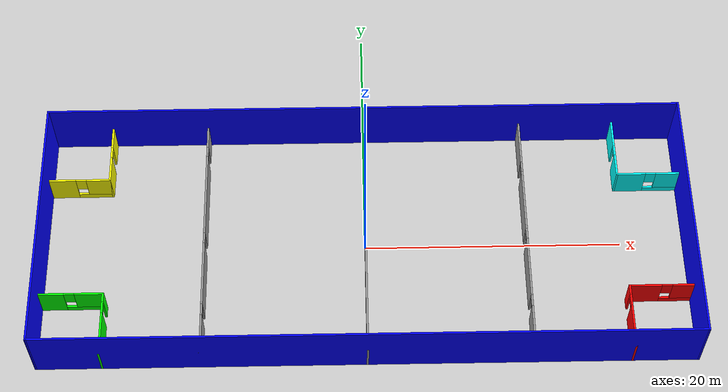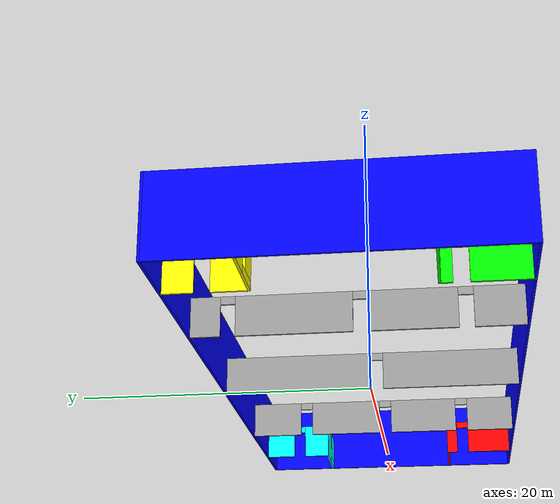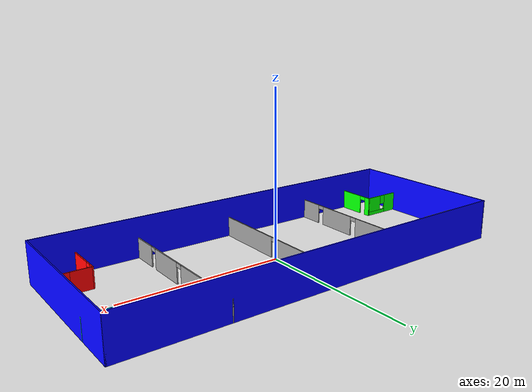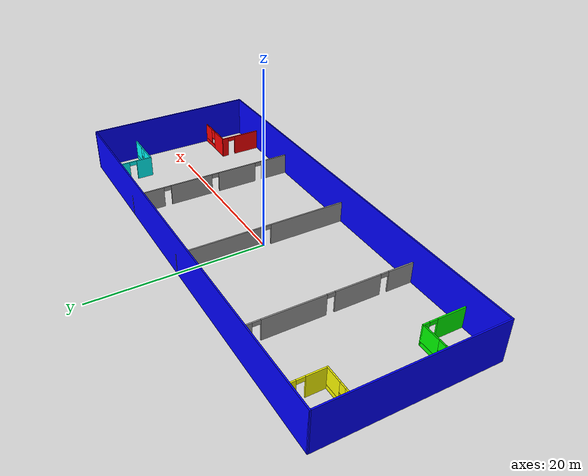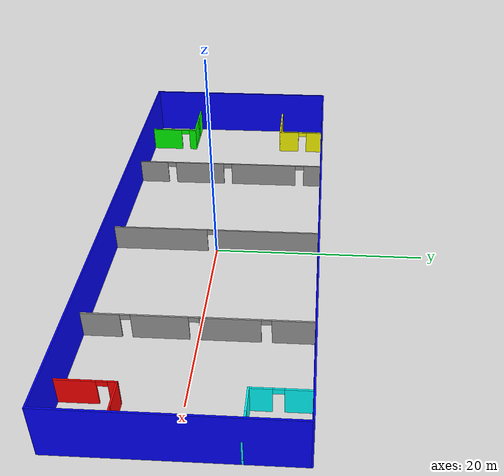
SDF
<?xml version='1.0'?>
<sdf version='1.6'>
  <model name='my_office'>
    <pose frame=''>0 0 0 0 -0 0</pose>
    <link name='Wall_17'>
      <pose frame=''>-22.557 5.123 0 0 -0 0</pose>
      <visual name='Wall_17_Visual_0'>
        <pose frame=''>-1.37462 0 1.25 0 -0 0</pose>
        <geometry>
          <box>
            <size>2.25075 0.15 2.5</size>
          </box>
        </geometry>
        <material>
          <script>
            <uri>file://media/materials/scripts/gazebo.material</uri>
            <name>Gazebo/Grey</name>
          </script>
          <ambient>1 1 0 1</ambient>
        </material>
        <meta>
          <layer>0</layer>
        </meta>
      </visual>
      <collision name='Wall_17_Collision_0'>
        <geometry>
          <box>
            <size>2.25075 0.15 2.5</size>
          </box>
        </geometry>
        <pose frame=''>-1.37462 0 1.25 0 -0 0</pose>
      </collision>
      <visual name='Wall_17_Visual_1'>
        <pose frame=''>1.12538 0 0.25 0 -0 0</pose>
        <geometry>
          <box>
            <size>2.74925 0.15 0.5</size>
          </box>
        </geometry>
        <material>
          <script>
            <uri>file://media/materials/scripts/gazebo.material</uri>
            <name>Gazebo/Grey</name>
          </script>
          <ambient>1 1 0 1</ambient>
        </material>
        <meta>
          <layer>0</layer>
        </meta>
      </visual>
      <collision name='Wall_17_Collision_1'>
        <geometry>
          <box>
            <size>2.74925 0.15 0.5</size>
          </box>
        </geometry>
        <pose frame=''>1.12538 0 0.25 0 -0 0</pose>
      </collision>
      <visual name='Wall_17_Visual_2'>
        <pose frame=''>1.52538 0 1.5 0 -0 0</pose>
        <geometry>
          <box>
            <size>1.94925 0.15 2</size>
          </box>
        </geometry>
        <material>
          <script>
            <uri>file://media/materials/scripts/gazebo.material</uri>
            <name>Gazebo/Grey</name>
          </script>
          <ambient>1 1 0 1</ambient>
        </material>
        <meta>
          <layer>0</layer>
        </meta>
      </visual>
      <collision name='Wall_17_Collision_2'>
        <geometry>
          <box>
            <size>1.94925 0.15 2</size>
          </box>
        </geometry>
        <pose frame=''>1.52538 0 1.5 0 -0 0</pose>
      </collision>
      <visual name='Wall_17_Visual_3'>
        <pose frame=''>0.150753 0 1.9 0 -0 0</pose>
        <geometry>
          <box>
            <size>0.8 0.15 1.2</size>
          </box>
        </geometry>
        <material>
          <script>
            <uri>file://media/materials/scripts/gazebo.material</uri>
            <name>Gazebo/Grey</name>
          </script>
          <ambient>1 1 0 1</ambient>
        </material>
        <meta>
          <layer>0</layer>
        </meta>
      </visual>
      <collision name='Wall_17_Collision_3'>
        <geometry>
          <box>
            <size>0.8 0.15 1.2</size>
          </box>
        </geometry>
        <pose frame=''>0.150753 0 1.9 0 -0 0</pose>
      </collision>
    </link>
    <link name='Wall_18'>
      <pose frame=''>-20.132 7.548 0 0 -0 1.5708</pose>
      <visual name='Wall_18_Visual_0'>
        <pose frame=''>-1.39336 0 1.25 0 -0 0</pose>
        <geometry>
          <box>
            <size>2.21328 0.15 2.5</size>
          </box>
        </geometry>
        <material>
          <script>
            <uri>file://media/materials/scripts/gazebo.material</uri>
            <name>Gazebo/Grey</name>
          </script>
          <ambient>1 1 0 1</ambient>
        </material>
        <meta>
          <layer>0</layer>
        </meta>
      </visual>
      <collision name='Wall_18_Collision_0'>
        <geometry>
          <box>
            <size>2.21328 0.15 2.5</size>
          </box>
        </geometry>
        <pose frame=''>-1.39336 0 1.25 0 -0 0</pose>
      </collision>
      <visual name='Wall_18_Visual_1'>
        <pose frame=''>1.55664 0 1.25 0 -0 0</pose>
        <geometry>
          <box>
            <size>1.88672 0.15 2.5</size>
          </box>
        </geometry>
        <material>
          <script>
            <uri>file://media/materials/scripts/gazebo.material</uri>
            <name>Gazebo/Grey</name>
          </script>
          <ambient>1 1 0 1</ambient>
        </material>
        <meta>
          <layer>0</layer>
        </meta>
      </visual>
      <collision name='Wall_18_Collision_1'>
        <geometry>
          <box>
            <size>1.88672 0.15 2.5</size>
          </box>
        </geometry>
        <pose frame=''>1.55664 0 1.25 0 -0 0</pose>
      </collision>
      <visual name='Wall_18_Visual_2'>
        <pose frame=''>0.163277 0 2.25 0 -0 0</pose>
        <geometry>
          <box>
            <size>0.9 0.15 0.5</size>
          </box>
        </geometry>
        <material>
          <script>
            <uri>file://media/materials/scripts/gazebo.material</uri>
            <name>Gazebo/Grey</name>
          </script>
          <ambient>1 1 0 1</ambient>
        </material>
        <meta>
          <layer>0</layer>
        </meta>
      </visual>
      <collision name='Wall_18_Collision_2'>
        <geometry>
          <box>
            <size>0.9 0.15 0.5</size>
          </box>
        </geometry>
        <pose frame=''>0.163277 0 2.25 0 -0 0</pose>
      </collision>
    </link>
    <link name='Wall_21'>
      <pose frame=''>-22.5 -5 0 0 -0 0</pose>
      <visual name='Wall_21_Visual_0'>
        <pose frame=''>-1.52857 0 1.25 0 -0 0</pose>
        <geometry>
          <box>
            <size>2.09286 0.15 2.5</size>
          </box>
        </geometry>
        <material>
          <script>
            <uri>file://media/materials/scripts/gazebo.material</uri>
            <name>Gazebo/Grey</name>
          </script>
          <ambient>0 1 0 1</ambient>
        </material>
        <meta>
          <layer>0</layer>
        </meta>
      </visual>
      <collision name='Wall_21_Collision_0'>
        <geometry>
          <box>
            <size>2.09286 0.15 2.5</size>
          </box>
        </geometry>
        <pose frame=''>-1.52857 0 1.25 0 -0 0</pose>
      </collision>
      <visual name='Wall_21_Visual_1'>
        <pose frame=''>1.04643 0 0.25 0 -0 0</pose>
        <geometry>
          <box>
            <size>3.05714 0.15 0.5</size>
          </box>
        </geometry>
        <material>
          <script>
            <uri>file://media/materials/scripts/gazebo.material</uri>
            <name>Gazebo/Grey</name>
          </script>
          <ambient>0 1 0 1</ambient>
        </material>
        <meta>
          <layer>0</layer>
        </meta>
      </visual>
      <collision name='Wall_21_Collision_1'>
        <geometry>
          <box>
            <size>3.05714 0.15 0.5</size>
          </box>
        </geometry>
        <pose frame=''>1.04643 0 0.25 0 -0 0</pose>
      </collision>
      <visual name='Wall_21_Visual_2'>
        <pose frame=''>1.44643 0 1.5 0 -0 0</pose>
        <geometry>
          <box>
            <size>2.25714 0.15 2</size>
          </box>
        </geometry>
        <material>
          <script>
            <uri>file://media/materials/scripts/gazebo.material</uri>
            <name>Gazebo/Grey</name>
          </script>
          <ambient>0 1 0 1</ambient>
        </material>
        <meta>
          <layer>0</layer>
        </meta>
      </visual>
      <collision name='Wall_21_Collision_2'>
        <geometry>
          <box>
            <size>2.25714 0.15 2</size>
          </box>
        </geometry>
        <pose frame=''>1.44643 0 1.5 0 -0 0</pose>
      </collision>
      <visual name='Wall_21_Visual_3'>
        <pose frame=''>-0.08214 0 1.9 0 -0 0</pose>
        <geometry>
          <box>
            <size>0.8 0.15 1.2</size>
          </box>
        </geometry>
        <material>
          <script>
            <uri>file://media/materials/scripts/gazebo.material</uri>
            <name>Gazebo/Grey</name>
          </script>
          <ambient>0 1 0 1</ambient>
        </material>
        <meta>
          <layer>0</layer>
        </meta>
      </visual>
      <collision name='Wall_21_Collision_3'>
        <geometry>
          <box>
            <size>0.8 0.15 1.2</size>
          </box>
        </geometry>
        <pose frame=''>-0.08214 0 1.9 0 -0 0</pose>
      </collision>
    </link>
    <link name='Wall_25'>
      <pose frame=''>-20 -7.5 0 0 0 -1.5708</pose>
      <visual name='Wall_25_Visual_0'>
        <pose frame=''>-2.18168 0 1.25 0 -0 0</pose>
        <geometry>
          <box>
            <size>0.78664 0.15 2.5</size>
          </box>
        </geometry>
        <material>
          <script>
            <uri>file://media/materials/scripts/gazebo.material</uri>
            <name>Gazebo/Grey</name>
          </script>
          <ambient>0 1 0 1</ambient>
        </material>
        <meta>
          <layer>0</layer>
        </meta>
      </visual>
      <collision name='Wall_25_Collision_0'>
        <geometry>
          <box>
            <size>0.78664 0.15 2.5</size>
          </box>
        </geometry>
        <pose frame=''>-2.18168 0 1.25 0 -0 0</pose>
      </collision>
      <visual name='Wall_25_Visual_1'>
        <pose frame=''>0.84332 0 1.25 0 -0 0</pose>
        <geometry>
          <box>
            <size>3.46336 0.15 2.5</size>
          </box>
        </geometry>
        <material>
          <script>
            <uri>file://media/materials/scripts/gazebo.material</uri>
            <name>Gazebo/Grey</name>
          </script>
          <ambient>0 1 0 1</ambient>
        </material>
        <meta>
          <layer>0</layer>
        </meta>
      </visual>
      <collision name='Wall_25_Collision_1'>
        <geometry>
          <box>
            <size>3.46336 0.15 2.5</size>
          </box>
        </geometry>
        <pose frame=''>0.84332 0 1.25 0 -0 0</pose>
      </collision>
      <visual name='Wall_25_Visual_2'>
        <pose frame=''>-1.33836 0 2.25 0 -0 0</pose>
        <geometry>
          <box>
            <size>0.9 0.15 0.5</size>
          </box>
        </geometry>
        <material>
          <script>
            <uri>file://media/materials/scripts/gazebo.material</uri>
            <name>Gazebo/Grey</name>
          </script>
          <ambient>0 1 0 1</ambient>
        </material>
        <meta>
          <layer>0</layer>
        </meta>
      </visual>
      <collision name='Wall_25_Collision_2'>
        <geometry>
          <box>
            <size>0.9 0.15 0.5</size>
          </box>
        </geometry>
        <pose frame=''>-1.33836 0 2.25 0 -0 0</pose>
      </collision>
    </link>
    <link name='Wall_27'>
      <pose frame=''>20 -7.5 0 0 -0 1.5708</pose>
      <visual name='Wall_27_Visual_0'>
        <pose frame=''>-0.853021 0 1.25 0 -0 0</pose>
        <geometry>
          <box>
            <size>3.44396 0.15 2.5</size>
          </box>
        </geometry>
        <material>
          <script>
            <uri>file://media/materials/scripts/gazebo.material</uri>
            <name>Gazebo/Grey</name>
          </script>
          <ambient>1 0 0 1</ambient>
        </material>
        <meta>
          <layer>0</layer>
        </meta>
      </visual>
      <collision name='Wall_27_Collision_0'>
        <geometry>
          <box>
            <size>3.44396 0.15 2.5</size>
          </box>
        </geometry>
        <pose frame=''>-0.853021 0 1.25 0 -0 0</pose>
      </collision>
      <visual name='Wall_27_Visual_1'>
        <pose frame=''>2.17198 0 1.25 0 -0 0</pose>
        <geometry>
          <box>
            <size>0.806041 0.15 2.5</size>
          </box>
        </geometry>
        <material>
          <script>
            <uri>file://media/materials/scripts/gazebo.material</uri>
            <name>Gazebo/Grey</name>
          </script>
          <ambient>1 0 0 1</ambient>
        </material>
        <meta>
          <layer>0</layer>
        </meta>
      </visual>
      <collision name='Wall_27_Collision_1'>
        <geometry>
          <box>
            <size>0.806041 0.15 2.5</size>
          </box>
        </geometry>
        <pose frame=''>2.17198 0 1.25 0 -0 0</pose>
      </collision>
      <visual name='Wall_27_Visual_2'>
        <pose frame=''>1.31896 0 2.25 0 -0 0</pose>
        <geometry>
          <box>
            <size>0.9 0.15 0.5</size>
          </box>
        </geometry>
        <material>
          <script>
            <uri>file://media/materials/scripts/gazebo.material</uri>
            <name>Gazebo/Grey</name>
          </script>
          <ambient>1 0 0 1</ambient>
        </material>
        <meta>
          <layer>0</layer>
        </meta>
      </visual>
      <collision name='Wall_27_Collision_2'>
        <geometry>
          <box>
            <size>0.9 0.15 0.5</size>
          </box>
        </geometry>
        <pose frame=''>1.31896 0 2.25 0 -0 0</pose>
      </collision>
    </link>
    <link name='Wall_29'>
      <pose frame=''>22.5 -5 0 0 -0 0</pose>
      <visual name='Wall_29_Visual_0'>
        <pose frame=''>-1.30919 0 1.25 0 -0 0</pose>
        <geometry>
          <box>
            <size>2.53162 0.15 2.5</size>
          </box>
        </geometry>
        <material>
          <script>
            <uri>file://media/materials/scripts/gazebo.material</uri>
            <name>Gazebo/Grey</name>
          </script>
          <ambient>1 0 0 1</ambient>
        </material>
        <meta>
          <layer>0</layer>
        </meta>
      </visual>
      <collision name='Wall_29_Collision_0'>
        <geometry>
          <box>
            <size>2.53162 0.15 2.5</size>
          </box>
        </geometry>
        <pose frame=''>-1.30919 0 1.25 0 -0 0</pose>
      </collision>
      <visual name='Wall_29_Visual_1'>
        <pose frame=''>1.26581 0 0.25 0 -0 0</pose>
        <geometry>
          <box>
            <size>2.61838 0.15 0.5</size>
          </box>
        </geometry>
        <material>
          <script>
            <uri>file://media/materials/scripts/gazebo.material</uri>
            <name>Gazebo/Grey</name>
          </script>
          <ambient>1 0 0 1</ambient>
        </material>
        <meta>
          <layer>0</layer>
        </meta>
      </visual>
      <collision name='Wall_29_Collision_1'>
        <geometry>
          <box>
            <size>2.61838 0.15 0.5</size>
          </box>
        </geometry>
        <pose frame=''>1.26581 0 0.25 0 -0 0</pose>
      </collision>
      <visual name='Wall_29_Visual_2'>
        <pose frame=''>1.66581 0 1.5 0 -0 0</pose>
        <geometry>
          <box>
            <size>1.81838 0.15 2</size>
          </box>
        </geometry>
        <material>
          <script>
            <uri>file://media/materials/scripts/gazebo.material</uri>
            <name>Gazebo/Grey</name>
          </script>
          <ambient>1 0 0 1</ambient>
        </material>
        <meta>
          <layer>0</layer>
        </meta>
      </visual>
      <collision name='Wall_29_Collision_2'>
        <geometry>
          <box>
            <size>1.81838 0.15 2</size>
          </box>
        </geometry>
        <pose frame=''>1.66581 0 1.5 0 -0 0</pose>
      </collision>
      <visual name='Wall_29_Visual_3'>
        <pose frame=''>0.356623 0 1.9 0 -0 0</pose>
        <geometry>
          <box>
            <size>0.8 0.15 1.2</size>
          </box>
        </geometry>
        <material>
          <script>
            <uri>file://media/materials/scripts/gazebo.material</uri>
            <name>Gazebo/Grey</name>
          </script>
          <ambient>1 0 0 1</ambient>
        </material>
        <meta>
          <layer>0</layer>
        </meta>
      </visual>
      <collision name='Wall_29_Collision_3'>
        <geometry>
          <box>
            <size>0.8 0.15 1.2</size>
          </box>
        </geometry>
        <pose frame=''>0.356623 0 1.9 0 -0 0</pose>
      </collision>
    </link>
    <link name='Wall_3'>
      <collision name='Wall_3_Collision'>
        <geometry>
          <box>
            <size>20.15 0.15 5</size>
          </box>
        </geometry>
        <pose frame=''>0 0 2.5 0 -0 0</pose>
      </collision>
      <visual name='Wall_3_Visual'>
        <pose frame=''>0 0 2.5 0 -0 0</pose>
        <geometry>
          <box>
            <size>20.15 0.15 5</size>
          </box>
        </geometry>
        <material>
          <script>
            <uri>file://media/materials/scripts/gazebo.material</uri>
            <name>Gazebo/Grey</name>
          </script>
          <ambient>0 0 1 1</ambient>
        </material>
        <meta>
          <layer>0</layer>
        </meta>
      </visual>
      <pose frame=''>-25 0 0 0 0 -1.5708</pose>
    </link>
    <link name='Wall_31'>
      <pose frame=''>20 7.5 0 0 0 -1.5708</pose>
      <visual name='Wall_31_Visual_0'>
        <pose frame=''>-1.40783 0 1.25 0 -0 0</pose>
        <geometry>
          <box>
            <size>2.33433 0.15 2.5</size>
          </box>
        </geometry>
        <material>
          <script>
            <uri>file://media/materials/scripts/gazebo.material</uri>
            <name>Gazebo/Grey</name>
          </script>
          <ambient>0 1 1 1</ambient>
        </material>
        <meta>
          <layer>0</layer>
        </meta>
      </visual>
      <collision name='Wall_31_Collision_0'>
        <geometry>
          <box>
            <size>2.33433 0.15 2.5</size>
          </box>
        </geometry>
        <pose frame=''>-1.40783 0 1.25 0 -0 0</pose>
      </collision>
      <visual name='Wall_31_Visual_1'>
        <pose frame=''>1.61717 0 1.25 0 -0 0</pose>
        <geometry>
          <box>
            <size>1.91567 0.15 2.5</size>
          </box>
        </geometry>
        <material>
          <script>
            <uri>file://media/materials/scripts/gazebo.material</uri>
            <name>Gazebo/Grey</name>
          </script>
          <ambient>0 1 1 1</ambient>
        </material>
        <meta>
          <layer>0</layer>
        </meta>
      </visual>
      <collision name='Wall_31_Collision_1'>
        <geometry>
          <box>
            <size>1.91567 0.15 2.5</size>
          </box>
        </geometry>
        <pose frame=''>1.61717 0 1.25 0 -0 0</pose>
      </collision>
      <visual name='Wall_31_Visual_2'>
        <pose frame=''>0.209334 0 2.25 0 -0 0</pose>
        <geometry>
          <box>
            <size>0.9 0.15 0.5</size>
          </box>
        </geometry>
        <material>
          <script>
            <uri>file://media/materials/scripts/gazebo.material</uri>
            <name>Gazebo/Grey</name>
          </script>
          <ambient>0 1 1 1</ambient>
        </material>
        <meta>
          <layer>0</layer>
        </meta>
      </visual>
      <collision name='Wall_31_Collision_2'>
        <geometry>
          <box>
            <size>0.9 0.15 0.5</size>
          </box>
        </geometry>
        <pose frame=''>0.209334 0 2.25 0 -0 0</pose>
      </collision>
    </link>
    <link name='Wall_33'>
      <pose frame=''>22.5 5 0 0 -0 0</pose>
      <visual name='Wall_33_Visual_0'>
        <pose frame=''>-1.41033 0 1.25 0 -0 0</pose>
        <geometry>
          <box>
            <size>2.32934 0.15 2.5</size>
          </box>
        </geometry>
        <material>
          <script>
            <uri>file://media/materials/scripts/gazebo.material</uri>
            <name>Gazebo/Grey</name>
          </script>
          <ambient>0 1 1 1</ambient>
        </material>
        <meta>
          <layer>0</layer>
        </meta>
      </visual>
      <collision name='Wall_33_Collision_0'>
        <geometry>
          <box>
            <size>2.32934 0.15 2.5</size>
          </box>
        </geometry>
        <pose frame=''>-1.41033 0 1.25 0 -0 0</pose>
      </collision>
      <visual name='Wall_33_Visual_1'>
        <pose frame=''>1.16467 0 0.25 0 -0 0</pose>
        <geometry>
          <box>
            <size>2.82065 0.15 0.5</size>
          </box>
        </geometry>
        <material>
          <script>
            <uri>file://media/materials/scripts/gazebo.material</uri>
            <name>Gazebo/Grey</name>
          </script>
          <ambient>0 1 1 1</ambient>
        </material>
        <meta>
          <layer>0</layer>
        </meta>
      </visual>
      <collision name='Wall_33_Collision_1'>
        <geometry>
          <box>
            <size>2.82065 0.15 0.5</size>
          </box>
        </geometry>
        <pose frame=''>1.16467 0 0.25 0 -0 0</pose>
      </collision>
      <visual name='Wall_33_Visual_2'>
        <pose frame=''>1.56467 0 1.5 0 -0 0</pose>
        <geometry>
          <box>
            <size>2.02066 0.15 2</size>
          </box>
        </geometry>
        <material>
          <script>
            <uri>file://media/materials/scripts/gazebo.material</uri>
            <name>Gazebo/Grey</name>
          </script>
          <ambient>0 1 1 1</ambient>
        </material>
        <meta>
          <layer>0</layer>
        </meta>
      </visual>
      <collision name='Wall_33_Collision_2'>
        <geometry>
          <box>
            <size>2.02066 0.15 2</size>
          </box>
        </geometry>
        <pose frame=''>1.56467 0 1.5 0 -0 0</pose>
      </collision>
      <visual name='Wall_33_Visual_3'>
        <pose frame=''>0.154345 0 1.9 0 -0 0</pose>
        <geometry>
          <box>
            <size>0.8 0.15 1.2</size>
          </box>
        </geometry>
        <material>
          <script>
            <uri>file://media/materials/scripts/gazebo.material</uri>
            <name>Gazebo/Grey</name>
          </script>
          <ambient>0 1 1 1</ambient>
        </material>
        <meta>
          <layer>0</layer>
        </meta>
      </visual>
      <collision name='Wall_33_Collision_3'>
        <geometry>
          <box>
            <size>0.8 0.15 1.2</size>
          </box>
        </geometry>
        <pose frame=''>0.154345 0 1.9 0 -0 0</pose>
      </collision>
    </link>
    <link name='Wall_35'>
      <pose frame=''>0 0 0 0 0 -1.5708</pose>
      <visual name='Wall_35_Visual_0'>
        <pose frame=''>-5.06455 0 1.25 0 -0 0</pose>
        <geometry>
          <box>
            <size>10.0209 0.15 2.5</size>
          </box>
        </geometry>
        <material>
          <script>
            <uri>file://media/materials/scripts/gazebo.material</uri>
            <name>Gazebo/Grey</name>
          </script>
          <ambient>0 0 0 1</ambient>
        </material>
        <meta>
          <layer>0</layer>
        </meta>
      </visual>
      <collision name='Wall_35_Collision_0'>
        <geometry>
          <box>
            <size>10.0209 0.15 2.5</size>
          </box>
        </geometry>
        <pose frame=''>-5.06455 0 1.25 0 -0 0</pose>
      </collision>
      <visual name='Wall_35_Visual_1'>
        <pose frame=''>5.46045 0 1.25 0 -0 0</pose>
        <geometry>
          <box>
            <size>9.22911 0.15 2.5</size>
          </box>
        </geometry>
        <material>
          <script>
            <uri>file://media/materials/scripts/gazebo.material</uri>
            <name>Gazebo/Grey</name>
          </script>
          <ambient>0 0 0 1</ambient>
        </material>
        <meta>
          <layer>0</layer>
        </meta>
      </visual>
      <collision name='Wall_35_Collision_1'>
        <geometry>
          <box>
            <size>9.22911 0.15 2.5</size>
          </box>
        </geometry>
        <pose frame=''>5.46045 0 1.25 0 -0 0</pose>
      </collision>
      <visual name='Wall_35_Visual_2'>
        <pose frame=''>0.395894 0 2.25 0 -0 0</pose>
        <geometry>
          <box>
            <size>0.9 0.15 0.5</size>
          </box>
        </geometry>
        <material>
          <script>
            <uri>file://media/materials/scripts/gazebo.material</uri>
            <name>Gazebo/Grey</name>
          </script>
          <ambient>0 0 0 1</ambient>
        </material>
        <meta>
          <layer>0</layer>
        </meta>
      </visual>
      <collision name='Wall_35_Collision_2'>
        <geometry>
          <box>
            <size>0.9 0.15 0.5</size>
          </box>
        </geometry>
        <pose frame=''>0.395894 0 2.25 0 -0 0</pose>
      </collision>
    </link>
    <link name='Wall_37'>
      <pose frame=''>-12.5 0 0 0 0 -1.5708</pose>
      <visual name='Wall_37_Visual_0'>
        <pose frame=''>-9.08988 0 1.25 0 -0 0</pose>
        <geometry>
          <box>
            <size>1.97023 0.15 2.5</size>
          </box>
        </geometry>
        <material>
          <script>
            <uri>file://media/materials/scripts/gazebo.material</uri>
            <name>Gazebo/Grey</name>
          </script>
          <ambient>0 0 0 1</ambient>
        </material>
        <meta>
          <layer>0</layer>
        </meta>
      </visual>
      <collision name='Wall_37_Collision_0'>
        <geometry>
          <box>
            <size>1.97023 0.15 2.5</size>
          </box>
        </geometry>
        <pose frame=''>-9.08988 0 1.25 0 -0 0</pose>
      </collision>
      <visual name='Wall_37_Visual_1'>
        <pose frame=''>-3.69012 0 1.25 0 -0 0</pose>
        <geometry>
          <box>
            <size>7.02929 0.15 2.5</size>
          </box>
        </geometry>
        <material>
          <script>
            <uri>file://media/materials/scripts/gazebo.material</uri>
            <name>Gazebo/Grey</name>
          </script>
          <ambient>0 0 0 1</ambient>
        </material>
        <meta>
          <layer>0</layer>
        </meta>
      </visual>
      <collision name='Wall_37_Collision_1'>
        <geometry>
          <box>
            <size>7.02929 0.15 2.5</size>
          </box>
        </geometry>
        <pose frame=''>-3.69012 0 1.25 0 -0 0</pose>
      </collision>
      <visual name='Wall_37_Visual_2'>
        <pose frame=''>3.36938 0 1.25 0 -0 0</pose>
        <geometry>
          <box>
            <size>5.2897 0.15 2.5</size>
          </box>
        </geometry>
        <material>
          <script>
            <uri>file://media/materials/scripts/gazebo.material</uri>
            <name>Gazebo/Grey</name>
          </script>
          <ambient>0 0 0 1</ambient>
        </material>
        <meta>
          <layer>0</layer>
        </meta>
      </visual>
      <collision name='Wall_37_Collision_2'>
        <geometry>
          <box>
            <size>5.2897 0.15 2.5</size>
          </box>
        </geometry>
        <pose frame=''>3.36938 0 1.25 0 -0 0</pose>
      </collision>
      <visual name='Wall_37_Visual_3'>
        <pose frame=''>8.49461 0 1.25 0 -0 0</pose>
        <geometry>
          <box>
            <size>3.16077 0.15 2.5</size>
          </box>
        </geometry>
        <material>
          <script>
            <uri>file://media/materials/scripts/gazebo.material</uri>
            <name>Gazebo/Grey</name>
          </script>
          <ambient>0 0 0 1</ambient>
        </material>
        <meta>
          <layer>0</layer>
        </meta>
      </visual>
      <collision name='Wall_37_Collision_3'>
        <geometry>
          <box>
            <size>3.16077 0.15 2.5</size>
          </box>
        </geometry>
        <pose frame=''>8.49461 0 1.25 0 -0 0</pose>
      </collision>
      <visual name='Wall_37_Visual_4'>
        <pose frame=''>-7.65477 0 2.25 0 -0 0</pose>
        <geometry>
          <box>
            <size>0.9 0.15 0.5</size>
          </box>
        </geometry>
        <material>
          <script>
            <uri>file://media/materials/scripts/gazebo.material</uri>
            <name>Gazebo/Grey</name>
          </script>
          <ambient>0 0 0 1</ambient>
        </material>
        <meta>
          <layer>0</layer>
        </meta>
      </visual>
      <collision name='Wall_37_Collision_4'>
        <geometry>
          <box>
            <size>0.9 0.15 0.5</size>
          </box>
        </geometry>
        <pose frame=''>-7.65477 0 2.25 0 -0 0</pose>
      </collision>
      <visual name='Wall_37_Visual_5'>
        <pose frame=''>0.274527 0 2.25 0 -0 0</pose>
        <geometry>
          <box>
            <size>0.9 0.15 0.5</size>
          </box>
        </geometry>
        <material>
          <script>
            <uri>file://media/materials/scripts/gazebo.material</uri>
            <name>Gazebo/Grey</name>
          </script>
          <ambient>0 0 0 1</ambient>
        </material>
        <meta>
          <layer>0</layer>
        </meta>
      </visual>
      <collision name='Wall_37_Collision_5'>
        <geometry>
          <box>
            <size>0.9 0.15 0.5</size>
          </box>
        </geometry>
        <pose frame=''>0.274527 0 2.25 0 -0 0</pose>
      </collision>
      <visual name='Wall_37_Visual_6'>
        <pose frame=''>6.46423 0 2.25 0 -0 0</pose>
        <geometry>
          <box>
            <size>0.9 0.15 0.5</size>
          </box>
        </geometry>
        <material>
          <script>
            <uri>file://media/materials/scripts/gazebo.material</uri>
            <name>Gazebo/Grey</name>
          </script>
          <ambient>0 0 0 1</ambient>
        </material>
        <meta>
          <layer>0</layer>
        </meta>
      </visual>
      <collision name='Wall_37_Collision_6'>
        <geometry>
          <box>
            <size>0.9 0.15 0.5</size>
          </box>
        </geometry>
        <pose frame=''>6.46423 0 2.25 0 -0 0</pose>
      </collision>
    </link>
    <link name='Wall_39'>
      <pose frame=''>12.5 0 0 0 0 -1.5708</pose>
      <visual name='Wall_39_Visual_0'>
        <pose frame=''>-8.17963 0 1.25 0 -0 0</pose>
        <geometry>
          <box>
            <size>3.79074 0.15 2.5</size>
          </box>
        </geometry>
        <material>
          <script>
            <uri>file://media/materials/scripts/gazebo.material</uri>
            <name>Gazebo/Grey</name>
          </script>
          <ambient>0 0 0 1</ambient>
        </material>
        <meta>
          <layer>0</layer>
        </meta>
      </visual>
      <collision name='Wall_39_Collision_0'>
        <geometry>
          <box>
            <size>3.79074 0.15 2.5</size>
          </box>
        </geometry>
        <pose frame=''>-8.17963 0 1.25 0 -0 0</pose>
      </collision>
      <visual name='Wall_39_Visual_1'>
        <pose frame=''>-2.77987 0 1.25 0 -0 0</pose>
        <geometry>
          <box>
            <size>5.20879 0.15 2.5</size>
          </box>
        </geometry>
        <material>
          <script>
            <uri>file://media/materials/scripts/gazebo.material</uri>
            <name>Gazebo/Grey</name>
          </script>
          <ambient>0 0 0 1</ambient>
        </material>
        <meta>
          <layer>0</layer>
        </meta>
      </visual>
      <collision name='Wall_39_Collision_1'>
        <geometry>
          <box>
            <size>5.20879 0.15 2.5</size>
          </box>
        </geometry>
        <pose frame=''>-2.77987 0 1.25 0 -0 0</pose>
      </collision>
      <visual name='Wall_39_Visual_2'>
        <pose frame=''>3.18733 0 1.25 0 -0 0</pose>
        <geometry>
          <box>
            <size>4.9256 0.15 2.5</size>
          </box>
        </geometry>
        <material>
          <script>
            <uri>file://media/materials/scripts/gazebo.material</uri>
            <name>Gazebo/Grey</name>
          </script>
          <ambient>0 0 0 1</ambient>
        </material>
        <meta>
          <layer>0</layer>
        </meta>
      </visual>
      <collision name='Wall_39_Collision_2'>
        <geometry>
          <box>
            <size>4.9256 0.15 2.5</size>
          </box>
        </geometry>
        <pose frame=''>3.18733 0 1.25 0 -0 0</pose>
      </collision>
      <visual name='Wall_39_Visual_3'>
        <pose frame=''>8.31256 0 1.25 0 -0 0</pose>
        <geometry>
          <box>
            <size>3.52487 0.15 2.5</size>
          </box>
        </geometry>
        <material>
          <script>
            <uri>file://media/materials/scripts/gazebo.material</uri>
            <name>Gazebo/Grey</name>
          </script>
          <ambient>0 0 0 1</ambient>
        </material>
        <meta>
          <layer>0</layer>
        </meta>
      </visual>
      <collision name='Wall_39_Collision_3'>
        <geometry>
          <box>
            <size>3.52487 0.15 2.5</size>
          </box>
        </geometry>
        <pose frame=''>8.31256 0 1.25 0 -0 0</pose>
      </collision>
      <visual name='Wall_39_Visual_4'>
        <pose frame=''>-5.83427 0 2.25 0 -0 0</pose>
        <geometry>
          <box>
            <size>0.9 0.15 0.5</size>
          </box>
        </geometry>
        <material>
          <script>
            <uri>file://media/materials/scripts/gazebo.material</uri>
            <name>Gazebo/Grey</name>
          </script>
          <ambient>0 0 0 1</ambient>
        </material>
        <meta>
          <layer>0</layer>
        </meta>
      </visual>
      <collision name='Wall_39_Collision_4'>
        <geometry>
          <box>
            <size>0.9 0.15 0.5</size>
          </box>
        </geometry>
        <pose frame=''>-5.83427 0 2.25 0 -0 0</pose>
      </collision>
      <visual name='Wall_39_Visual_5'>
        <pose frame=''>0.274527 0 2.25 0 -0 0</pose>
        <geometry>
          <box>
            <size>0.9 0.15 0.5</size>
          </box>
        </geometry>
        <material>
          <script>
            <uri>file://media/materials/scripts/gazebo.material</uri>
            <name>Gazebo/Grey</name>
          </script>
          <ambient>0 0 0 1</ambient>
        </material>
        <meta>
          <layer>0</layer>
        </meta>
      </visual>
      <collision name='Wall_39_Collision_5'>
        <geometry>
          <box>
            <size>0.9 0.15 0.5</size>
          </box>
        </geometry>
        <pose frame=''>0.274527 0 2.25 0 -0 0</pose>
      </collision>
      <visual name='Wall_39_Visual_6'>
        <pose frame=''>6.10013 0 2.25 0 -0 0</pose>
        <geometry>
          <box>
            <size>0.9 0.15 0.5</size>
          </box>
        </geometry>
        <material>
          <script>
            <uri>file://media/materials/scripts/gazebo.material</uri>
            <name>Gazebo/Grey</name>
          </script>
          <ambient>0 0 0 1</ambient>
        </material>
        <meta>
          <layer>0</layer>
        </meta>
      </visual>
      <collision name='Wall_39_Collision_6'>
        <geometry>
          <box>
            <size>0.9 0.15 0.5</size>
          </box>
        </geometry>
        <pose frame=''>6.10013 0 2.25 0 -0 0</pose>
      </collision>
    </link>
    <link name='Wall_4'>
      <collision name='Wall_4_Collision'>
        <geometry>
          <box>
            <size>50.15 0.15 5</size>
          </box>
        </geometry>
        <pose frame=''>0 0 2.5 0 -0 0</pose>
      </collision>
      <visual name='Wall_4_Visual'>
        <pose frame=''>0 0 2.5 0 -0 0</pose>
        <geometry>
          <box>
            <size>50.15 0.15 5</size>
          </box>
        </geometry>
        <material>
          <script>
            <uri>file://media/materials/scripts/gazebo.material</uri>
            <name>Gazebo/Grey</name>
          </script>
          <ambient>0 0 1 1</ambient>
        </material>
        <meta>
          <layer>0</layer>
        </meta>
      </visual>
      <pose frame=''>0 -10 0 0 -0 0</pose>
    </link>
    <link name='Wall_5'>
      <collision name='Wall_5_Collision'>
        <geometry>
          <box>
            <size>20.15 0.15 5</size>
          </box>
        </geometry>
        <pose frame=''>0 0 2.5 0 -0 0</pose>
      </collision>
      <visual name='Wall_5_Visual'>
        <pose frame=''>0 0 2.5 0 -0 0</pose>
        <geometry>
          <box>
            <size>20.15 0.15 5</size>
          </box>
        </geometry>
        <material>
          <script>
            <uri>file://media/materials/scripts/gazebo.material</uri>
            <name>Gazebo/Grey</name>
          </script>
          <ambient>0 0 1 1</ambient>
        </material>
        <meta>
          <layer>0</layer>
        </meta>
      </visual>
      <pose frame=''>25 0 0 0 -0 1.5708</pose>
    </link>
    <link name='Wall_8'>
      <collision name='Wall_8_Collision'>
        <geometry>
          <box>
            <size>50.15 0.15 5</size>
          </box>
        </geometry>
        <pose frame=''>0 0 2.5 0 -0 0</pose>
      </collision>
      <visual name='Wall_8_Visual'>
        <pose frame=''>0 0 2.5 0 -0 0</pose>
        <geometry>
          <box>
            <size>50.15 0.15 5</size>
          </box>
        </geometry>
        <material>
          <script>
            <uri>file://media/materials/scripts/gazebo.material</uri>
            <name>Gazebo/Grey</name>
          </script>
          <ambient>0 0 1 1</ambient>
        </material>
        <meta>
          <layer>0</layer>
        </meta>
      </visual>
      <pose frame=''>0 10 0 0 -0 0</pose>
    </link>
    <static>1</static>
  </model>
</sdf>
